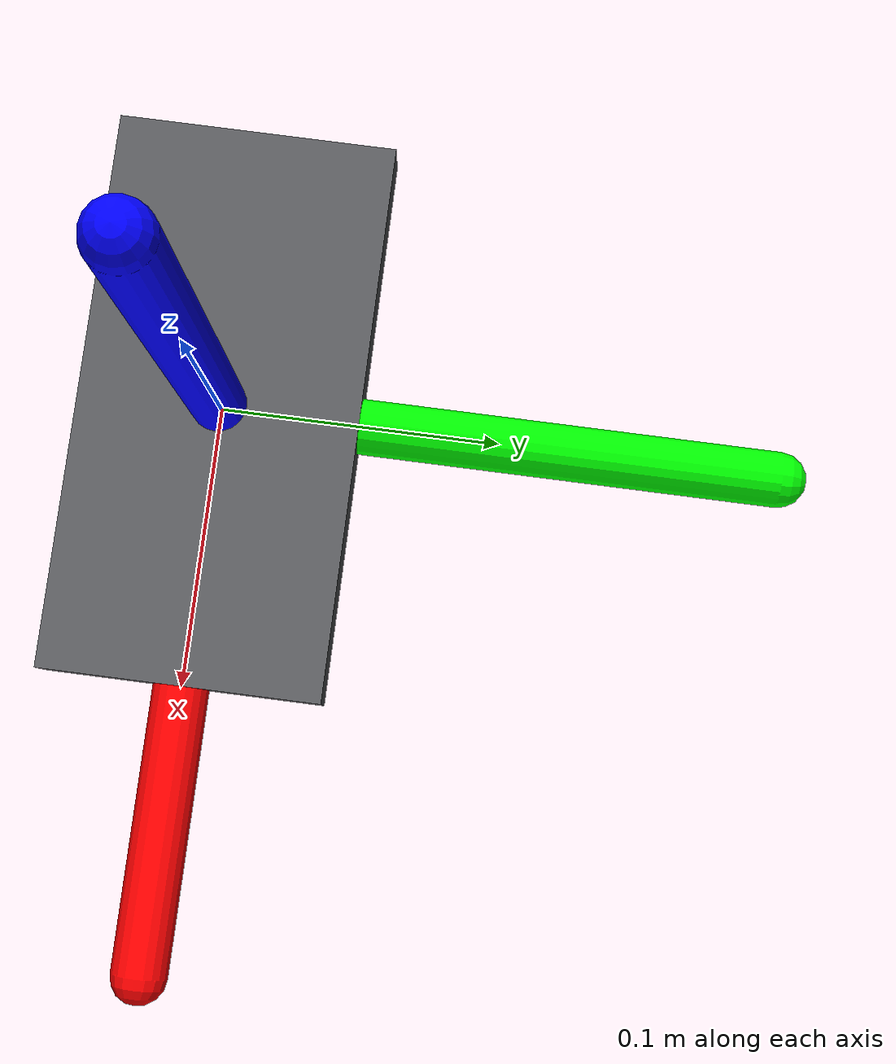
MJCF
<mujoco model="gripper_robot">
  <option timestep="0.01" gravity="0 0 -9.81"/>
  <compiler autolimits="true"/>
  <worldbody>
    <light name="top" pos="0 0 1"/>
    <body name="gripper">
       <inertial pos="0 0 0" mass="1.0" diaginertia="0.001 0.001 0.001"/>
      <joint name="center_x" pos="0 0 0" damping="0.3" axis="1 0 0" type="slide" range="-5 5"/>
      <joint name="center_y" pos="0 0 0" damping="0.3" axis="0 1 0" type="slide" range="-5 5"/>
      <joint name="center_z" pos="0 0 0" damping="0.3" axis="0 0 1" type="slide" range="-5 5"/>
      <geom size="0.1 0.05 0.01" type="box" rgba="0.356 0.361 0.376 1"/>

      <geom type="capsule" fromto="0 0 0 0.2 0 0" size="0.01" rgba="1 0 0 1" contype="0" conaffinity="0"/>
      <geom type="capsule" fromto="0 0 0 0 0.2 0" size="0.01" rgba="0 1 0 1" contype="0" conaffinity="0"/>
      <geom type="capsule" fromto="0 0 0 0 0 0.2" size="0.01" rgba="0 0 1 1" contype="0" conaffinity="0"/>
     </body>
  </worldbody>
  <actuator>
    <position name="ac_x" joint="center_x" />
    <position name="ac_y" joint="center_y" />
    <position name="ac_z" joint="center_z" />
  </actuator>
</mujoco>
